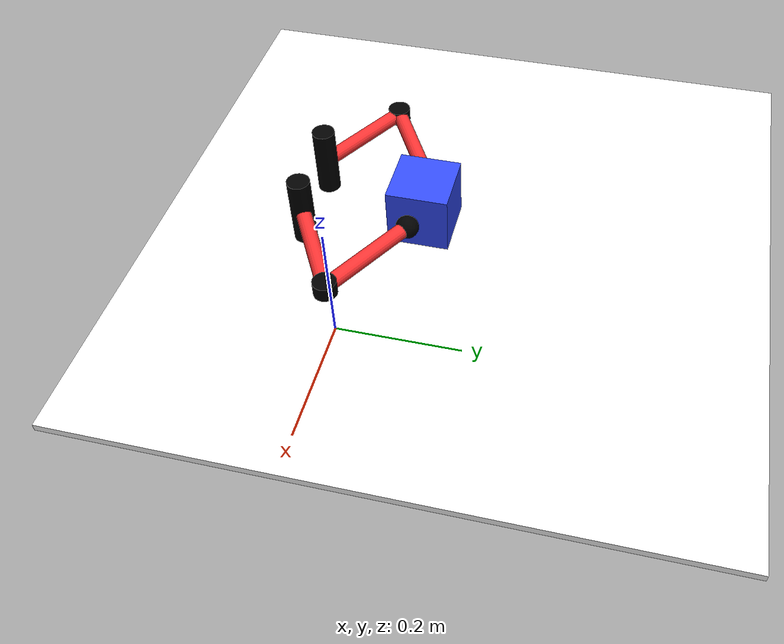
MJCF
<mujoco>

  <option integrator="RK4" viscosity="1" timestep="0.01"/>

  <size memory="1G"/>

  <visual>
    <headlight diffuse=".2 .2 .2"/>
  </visual>

  <default>
    <joint damping=".1" axis="0 1 0"/>
  </default>

  <worldbody>
    <light pos="0.4 -.15 .6" dir="-1 .5 -1" diffuse=".7 .7 .7"/>
    <light pos="-.4 -.15 .6" dir="1 .5 -1" diffuse=".7 .7 .7"/>

    <body name="table" pos= "-.05 0 .3" euler="0 0 0">
      <geom type='box' pos = "0.05 0.2 -0.05" size="0.4 0.4 0.005" rgba="1 1 1 1"/>
    </body>
    <body name="cube" euler="0 0 0">
      <joint type="slide" name="slider_1" axis="1 0 0"/>
      <joint type="slide" name="slider_2" axis="0 1 0"/>
      <geom type="box" name="cube" pos = "0 0.15 0.3" size="0.04 0.04 0.04" rgba="0.2 0.3 1 1"/>
    </body>
    <body name="arm1" pos="-.05 0 .3" euler="90 0 0" >
      <joint name="arm1"/>
      <geom type="cylinder" size=".015 .05" zaxis="0 1 0" rgba="0 0 0 1"/>
      <geom type="capsule" size=".01" fromto="0 0 0 -.12 0 -.07" rgba="1 0.2 0.2 1"/>
      <body name="arm2" pos="-.12 0 -.07">
        <joint name="arm2"/>
        <geom type="cylinder" size=".015 .01" zaxis="0 1 0" rgba="0 0 0 1"/>
        <geom type="capsule" size=".01" fromto="0 0 0 .12 0 -.07" rgba="1 0.2 0.2 1"/>

        <body name = "end_effector_1" pos="0.12 0 -.07">
          <geom type = "sphere" size = "0.015" rgba = "0 0 0 1"/>
        </body>

      </body>

    </body>
    <body name="arm3" pos=".05 0 .3" euler="270 180 0" >
      <joint name="arm3"/>
      <geom type="cylinder" size=".015 .05" zaxis="0 1 0" rgba="0 0 0 1"/>
      <geom type="capsule" size=".01" fromto="0 0 0 -.12 0 -.07" rgba="1 0.2 0.2 1"/>
      <body name="arm4" pos="-.12 0 -.07">
        <joint name="arm4"/>
        <geom type="cylinder" size=".015 .01" zaxis="0 1 0" rgba="0 0 0 1"/>
        <geom type="capsule" size=".01" fromto="0 0 0 .12 0 -.07" rgba="1 0.2 0.2 1"/>

        <body name = "end_effector_2" pos="0.12 0 -.07">
          <geom type = "sphere" size = "0.015" rgba = "0 0 0 1"/>
        </body>

      </body>
    </body>

</worldbody>
  <actuator>
    <position name="arm1" joint="arm1" ctrlrange="-.8 1" ctrllimited="true" kp="10"/>
    <position name="arm2" joint="arm2" ctrlrange="-.8 1" ctrllimited="true" kp="10"/>
    <position name="arm3" joint="arm3" ctrlrange="-.8 1" ctrllimited="true" kp="10"/>
    <position name="arm4" joint="arm4" ctrlrange="-.8 1" ctrllimited="true" kp="10"/>
    <position name="box_slide_1" joint="slider_1" ctrlrange="-10 10" ctrllimited="true" kp="100"/>
    <position name="box_slide_2" joint="slider_2" ctrlrange="-10 10" ctrllimited="true" kp="100"/>
  </actuator>
  <equality>
    <connect body1="end_effector_1" body2="cube" anchor="0 0 0" solimp="0.95 0.99 0.001" solref="0.005 1"/>
    <connect body1="end_effector_2" body2="cube" anchor="0 0 0" solimp="0.95 0.99 0.001" solref="0.005 1"/>
  </equality>
</mujoco>
